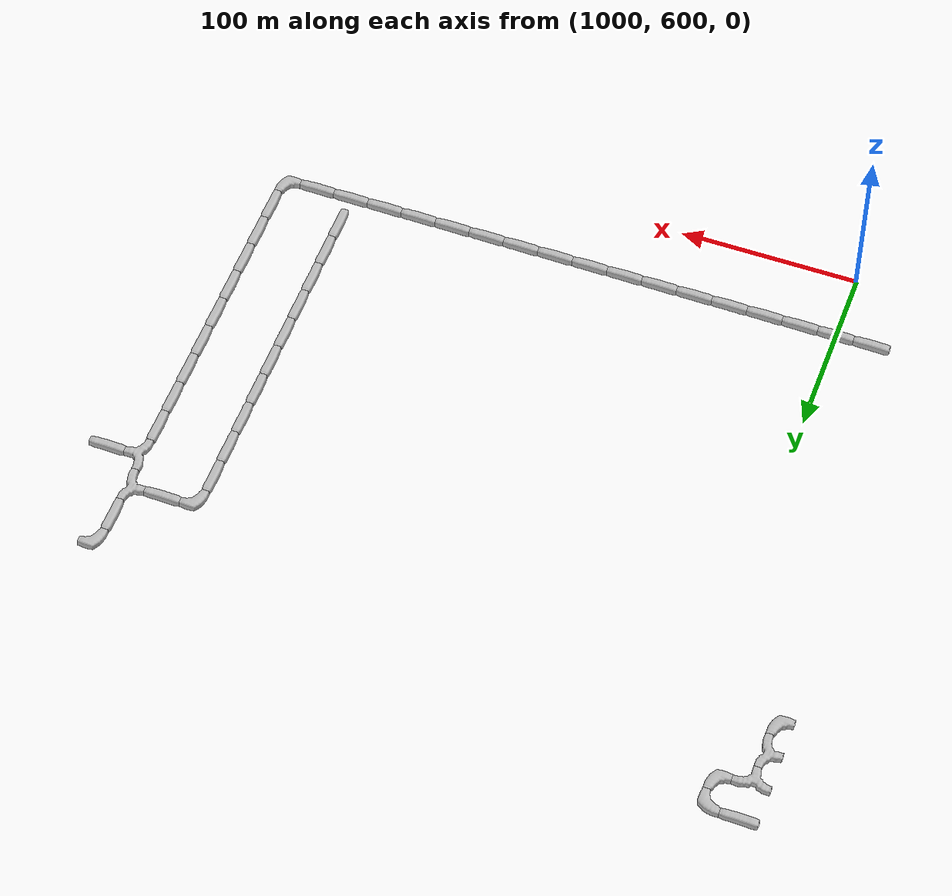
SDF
<sdf version="1.6">
 <world name="cave_16000_16">
  <include>
   <static>true</static>
   <name>cave_49_32</name>
   <pose>980 640 0 0 0 1.5707963267948966</pose>
   <uri>model://cave_straight_20m</uri>
  </include>
  <include>
   <static>true</static>
   <name>cave_50_32</name>
   <pose>1000 640 0 0 0 1.5707963267948966</pose>
   <uri>model://cave_straight_20m</uri>
  </include>
  <include>
   <static>true</static>
   <name>cave_51_32</name>
   <pose>1020 640 0 0 0 1.5707963267948966</pose>
   <uri>model://cave_straight_20m</uri>
  </include>
  <include>
   <static>true</static>
   <name>cave_52_32</name>
   <pose>1040 640 0 0 0 1.5707963267948966</pose>
   <uri>model://cave_straight_20m</uri>
  </include>
  <include>
   <static>true</static>
   <name>cave_53_32</name>
   <pose>1060 640 0 0 0 1.5707963267948966</pose>
   <uri>model://cave_straight_20m</uri>
  </include>
  <include>
   <static>true</static>
   <name>cave_54_32</name>
   <pose>1080 640 0 0 0 1.5707963267948966</pose>
   <uri>model://cave_straight_20m</uri>
  </include>
  <include>
   <static>true</static>
   <name>cave_55_32</name>
   <pose>1100 640 0 0 0 1.5707963267948966</pose>
   <uri>model://cave_straight_20m</uri>
  </include>
  <include>
   <static>true</static>
   <name>cave_56_32</name>
   <pose>1120 640 0 0 0 1.5707963267948966</pose>
   <uri>model://cave_straight_20m</uri>
  </include>
  <include>
   <static>true</static>
   <name>cave_57_32</name>
   <pose>1140 640 0 0 0 1.5707963267948966</pose>
   <uri>model://cave_straight_20m</uri>
  </include>
  <include>
   <static>true</static>
   <name>cave_58_32</name>
   <pose>1160 640 0 0 0 1.5707963267948966</pose>
   <uri>model://cave_straight_20m</uri>
  </include>
  <include>
   <static>true</static>
   <name>cave_59_32</name>
   <pose>1180 640 0 0 0 1.5707963267948966</pose>
   <uri>model://cave_straight_20m</uri>
  </include>
  <include>
   <static>true</static>
   <name>cave_60_32</name>
   <pose>1200 640 0 0 0 1.5707963267948966</pose>
   <uri>model://cave_straight_20m</uri>
  </include>
  <include>
   <static>true</static>
   <name>cave_61_32</name>
   <pose>1220 640 0 0 0 1.5707963267948966</pose>
   <uri>model://cave_straight_20m</uri>
  </include>
  <include>
   <static>true</static>
   <name>cave_62_32</name>
   <pose>1240 640 0 0 0 1.5707963267948966</pose>
   <uri>model://cave_straight_20m</uri>
  </include>
  <include>
   <static>true</static>
   <name>cave_63_32</name>
   <pose>1260 640 0 0 0 1.5707963267948966</pose>
   <uri>model://cave_straight_20m</uri>
  </include>
  <include>
   <static>true</static>
   <name>cave_64_32</name>
   <pose>1280 640 0 0 0 1.5707963267948966</pose>
   <uri>model://cave_straight_20m</uri>
  </include>
  <include>
   <static>true</static>
   <name>cave_65_32</name>
   <pose>1300 640 0 0 0 1.5707963267948966</pose>
   <uri>model://cave_straight_20m</uri>
  </include>
  <include>
   <static>true</static>
   <name>cave_66_32</name>
   <pose>1320 640 0 0 0 1.5707963267948966</pose>
   <uri>model://cave_L_20m</uri>
  </include>
  <include>
   <static>true</static>
   <name>cave_66_33</name>
   <pose>1320 660 0 0 0 0.0</pose>
   <uri>model://cave_straight_20m</uri>
  </include>
  <include>
   <static>true</static>
   <name>cave_66_34</name>
   <pose>1320 680 0 0 0 0.0</pose>
   <uri>model://cave_straight_20m</uri>
  </include>
  <include>
   <static>true</static>
   <name>cave_66_35</name>
   <pose>1320 700 0 0 0 0.0</pose>
   <uri>model://cave_straight_20m</uri>
  </include>
  <include>
   <static>true</static>
   <name>cave_66_36</name>
   <pose>1320 720 0 0 0 0.0</pose>
   <uri>model://cave_straight_20m</uri>
  </include>
  <include>
   <static>true</static>
   <name>cave_66_37</name>
   <pose>1320 740 0 0 0 0.0</pose>
   <uri>model://cave_straight_20m</uri>
  </include>
  <include>
   <static>true</static>
   <name>cave_66_38</name>
   <pose>1320 760 0 0 0 0.0</pose>
   <uri>model://cave_straight_20m</uri>
  </include>
  <include>
   <static>true</static>
   <name>cave_66_39</name>
   <pose>1320 780 0 0 0 0.0</pose>
   <uri>model://cave_straight_20m</uri>
  </include>
  <include>
   <static>true</static>
   <name>cave_66_40</name>
   <pose>1320 800 0 0 0 0.0</pose>
   <uri>model://cave_straight_20m</uri>
  </include>
  <include>
   <static>true</static>
   <name>cave_66_41</name>
   <pose>1320 820 0 0 0 0.0</pose>
   <uri>model://cave_straight_20m</uri>
  </include>
  <include>
   <static>true</static>
   <name>cave_66_42</name>
   <pose>1320 840 0 0 0 -1.5707963267948966</pose>
   <uri>model://cave_3way_20m</uri>
  </include>
  <include>
   <static>true</static>
   <name>cave_67_42</name>
   <pose>1340 840 0 0 0 1.5707963267948966</pose>
   <uri>model://cave_straight_20m</uri>
  </include>
  <include>
   <static>true</static>
   <name>cave_66_43</name>
   <pose>1320 860 0 0 0 1.5707963267948966</pose>
   <uri>model://cave_3way_20m</uri>
  </include>
  <include>
   <static>true</static>
   <name>cave_65_43</name>
   <pose>1300 860 0 0 0 1.5707963267948966</pose>
   <uri>model://cave_straight_20m</uri>
  </include>
  <include>
   <static>true</static>
   <name>cave_64_43</name>
   <pose>1280 860 0 0 0 -1.5707963267948966</pose>
   <uri>model://cave_L_20m</uri>
  </include>
  <include>
   <static>true</static>
   <name>cave_64_42</name>
   <pose>1280 840 0 0 0 0.0</pose>
   <uri>model://cave_straight_20m</uri>
  </include>
  <include>
   <static>true</static>
   <name>cave_64_41</name>
   <pose>1280 820 0 0 0 0.0</pose>
   <uri>model://cave_straight_20m</uri>
  </include>
  <include>
   <static>true</static>
   <name>cave_64_40</name>
   <pose>1280 800 0 0 0 0.0</pose>
   <uri>model://cave_straight_20m</uri>
  </include>
  <include>
   <static>true</static>
   <name>cave_64_39</name>
   <pose>1280 780 0 0 0 0.0</pose>
   <uri>model://cave_straight_20m</uri>
  </include>
  <include>
   <static>true</static>
   <name>cave_64_38</name>
   <pose>1280 760 0 0 0 0.0</pose>
   <uri>model://cave_straight_20m</uri>
  </include>
  <include>
   <static>true</static>
   <name>cave_64_37</name>
   <pose>1280 740 0 0 0 0.0</pose>
   <uri>model://cave_straight_20m</uri>
  </include>
  <include>
   <static>true</static>
   <name>cave_64_36</name>
   <pose>1280 720 0 0 0 0.0</pose>
   <uri>model://cave_straight_20m</uri>
  </include>
  <include>
   <static>true</static>
   <name>cave_64_35</name>
   <pose>1280 700 0 0 0 0.0</pose>
   <uri>model://cave_straight_20m</uri>
  </include>
  <include>
   <static>true</static>
   <name>cave_64_34</name>
   <pose>1280 680 0 0 0 0.0</pose>
   <uri>model://cave_straight_20m</uri>
  </include>
  <include>
   <static>true</static>
   <name>cave_64_33</name>
   <pose>1280 660 0 0 0 0.0</pose>
   <uri>model://cave_straight_20m</uri>
  </include>
  <include>
   <static>true</static>
   <name>cave_66_44</name>
   <pose>1320 880 0 0 0 0.0</pose>
   <uri>model://cave_straight_20m</uri>
  </include>
  <include>
   <static>true</static>
   <name>cave_66_45</name>
   <pose>1320 900 0 0 0 -1.5707963267948966</pose>
   <uri>model://cave_L_20m</uri>
  </include>
  <include>
   <static>true</static>
   <name>cave_48_47</name>
   <pose>960 940 0 0 0 1.5707963267948966</pose>
   <uri>model://cave_straight_20m</uri>
  </include>
  <include>
   <static>true</static>
   <name>cave_49_47</name>
   <pose>980 940 0 0 0 3.141592653589793</pose>
   <uri>model://cave_L_20m</uri>
  </include>
  <include>
   <static>true</static>
   <name>cave_49_46</name>
   <pose>980 920 0 0 0 1.5707963267948966</pose>
   <uri>model://cave_L_20m</uri>
  </include>
  <include>
   <static>true</static>
   <name>cave_48_46</name>
   <pose>960 920 0 0 0 3.141592653589793</pose>
   <uri>model://cave_3way_20m</uri>
  </include>
  <include>
   <static>true</static>
   <name>cave_48_45</name>
   <pose>960 900 0 0 0 1.5707963267948966</pose>
   <uri>model://cave_3way_20m</uri>
  </include>
  <include>
   <static>true</static>
   <name>cave_48_44</name>
   <pose>960 880 0 0 0 1.5707963267948966</pose>
   <uri>model://cave_L_20m</uri>
  </include>
 </world>
</sdf>
